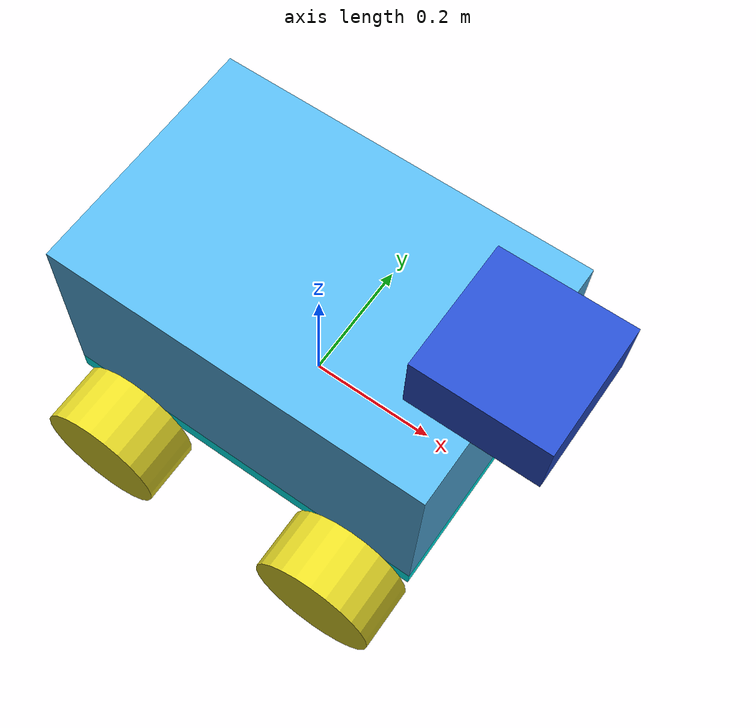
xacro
<?xml version='1.0'?>

<robot name="robot" xmlns:xacro="http://www.ros.org/wiki/xacro">

  <!-- CONSTANTS -->
  <xacro:property name="camera_width" value="0.2"/>
  <xacro:property name="camera_length" value="0.2"/>
  <xacro:property name="camera_height" value="0.1"/>
  <xacro:property name="camera_mass" value="0.01"/>
  <xacro:property name="chassis_width" value="0.4"/>
  <xacro:property name="chassis_length" value="0.6"/>
  <xacro:property name="chassis_height" value="0.03"/>
  <xacro:property name="chassis_height_B" value="0.3"/>
  <xacro:property name="chassis_mass" value="1.5"/>
  <xacro:property name="chassis_mass_B" value="0.005"/>
  <xacro:property name="wheel_radius" value="0.1"/>
  <xacro:property name="wheel_width" value="0.1"/>
  <xacro:property name="wheel_mass" value="0.25"/>

  <xacro:property name="i0" value="1e-10"/> <!-- default inertia -->

  <xacro:property name="u0" value="0.5"/> <!-- default miu (friction coef.) (orig: 0.8693)-->

  <xacro:include filename="$(find competition_2019t2)/urdf/materials.xacro"/>

  <!-- MACROS -->
  <macro name="cylinder_inertial" params="name m r h">
    <inertial name="${name}_inertial">
      <mass value="${m}"/>
      <inertia  ixx="${m*(3*r*r+h*h)/12}" ixy = "${i0}" ixz = "${i0}"
                iyy="${m*(3*r*r+h*h)/12}" iyz = "${i0}"
                izz="${m*r*r/2}"/>
    </inertial>
  </macro>

  <macro name="box_inertial" params="name m x y z">
    <inertial name="${name}_inertial">
      <mass value="${m}"/>
      <inertia  ixx="${m*(y*y+z*z)/12}" ixy = "${i0}" ixz = "${i0}"
                iyy="${m*(x*x+y*y)/12}" iyz = "${i0}"
                izz="${m*(x*x+z*z)/12}"/>
    </inertial>
  </macro>

  <macro name="sphere_inertial" params="name m r">
    <inertial name="${name}_inertial">
      <mass value="${m}"/>
      <inertia  ixx="${2*m*r*r/5}" ixy = "${i0}" ixz = "${i0}"
                iyy="${2*m*r*r/5}" iyz = "${i0}"
                izz="${2*m*r*r/5}"/>
    </inertial>
  </macro>

  <!-- ROBOT DESIGN -->

  <!-- 1. Chasis -->
  <link name='chassis'>
    <xacro:box_inertial name="chassis" m="${chassis_mass}" x="${chassis_length}" y="${chassis_width}" z="${chassis_height}"/>
    <collision name='chassis_collision'>
      <geometry>
        <box size="${chassis_length} ${chassis_width} ${chassis_height}"/>
      </geometry>
    </collision>
    <visual name='chassis_visual'>
      <origin xyz="0 0 0" rpy=" 0 0 0"/>
      <geometry>
        <box size="${chassis_length} ${chassis_width} ${chassis_height}"/>
      </geometry>
      <material name="Cyan">
        <color rgba="0 1.0 1.0 1.0"/>
      </material>
    </visual>
  </link>

  <link name="upper_half">
    <xacro:box_inertial name="upper_half" m="${chassis_mass_B}" x="${chassis_length}" y="${chassis_width}" z="${chassis_height_B}"/>
    <origin xyz = "0.0 0.0 0.0"/>
    <visual>
      <geometry>
        <box size = "${chassis_length} ${chassis_width} ${chassis_height_B}"/>
      </geometry>
    </visual>
    <collision>
      <geometry>
        <box size = "${chassis_length} ${chassis_width} ${chassis_height_B}"/>
      </geometry>
    </collision>
  </link>

  <joint name="chassis_joint" type="fixed">
    <origin xyz="0 0 ${chassis_height/2+chassis_height_B/2}"/>
    <parent link="chassis"/>
    <child link="upper_half"/>
  </joint>

  <!-- 2. Wheels -->
  <link name='wheel_FR'>
    <xacro:cylinder_inertial name="wheel_FR" m="${wheel_mass}" r="${wheel_radius}" h="${wheel_width}"/>
    <collision name='wheel_FR_collision'>
      <origin xyz="0 0 0" rpy="1.5708 0 0"/>
      <geometry>
        <cylinder radius="${wheel_radius}" length="${wheel_width}"/>
      </geometry>
    </collision>
    <visual name='wheel_FR_visual'>
      <origin xyz="0 0 0" rpy="1.5708 0 0"/>
      <geometry>
        <cylinder radius="${wheel_radius}" length="${wheel_width}"/>
      </geometry>
    </visual>
  </link>

  <link name='wheel_FL'>
    <xacro:cylinder_inertial name="wheel_FL" m="${wheel_mass}" r="${wheel_radius}" h="${wheel_width}"/>
    <collision name='wheel_FL_collision'>
      <origin xyz="0 0 0" rpy="1.5708 0 0"/>
      <geometry>
        <cylinder radius="${wheel_radius}" length="${wheel_width}"/>
      </geometry>
    </collision>
    <visual name='wheel_FL_visual'>
      <origin xyz="0 0 0" rpy="1.5708 0 0"/>
      <geometry>
        <cylinder radius="${wheel_radius}" length="${wheel_width}"/>
      </geometry>
    </visual>
  </link>

  <link name='wheel_RR'>
    <xacro:cylinder_inertial name="wheel_RR" m="${wheel_mass}" r="${wheel_radius}" h="${wheel_width}"/>
    <collision name='wheel_RR_collision'>
      <origin xyz="0 0 0" rpy="1.5708 0 0"/>
      <geometry>
        <cylinder radius="${wheel_radius}" length="${wheel_width}"/>
      </geometry>
    </collision>
    <visual name='wheel_RR_visual'>
      <origin xyz="0 0 0" rpy="1.5708 0 0"/>
      <geometry>
        <cylinder radius="${wheel_radius}" length="${wheel_width}"/>
      </geometry>
    </visual>
  </link>

  <link name='wheel_RL'>
    <xacro:cylinder_inertial name="wheel_RL" m="${wheel_mass}" r="${wheel_radius}" h="${wheel_width}"/>
    <collision name='wheel_RL_collision'>
      <origin xyz="0 0 0" rpy="1.5708 0 0"/>
      <geometry>
        <cylinder radius="${wheel_radius}" length="${wheel_width}"/>
      </geometry>
    </collision>
    <visual name='wheel_RL_visual'>
      <origin xyz="0 0 0" rpy="1.5708 0 0"/>
      <geometry>
        <cylinder radius="${wheel_radius}" length="${wheel_width}"/>
      </geometry>
    </visual>
  </link>

  <!-- Wheels joints -->
  <joint name="wheel_FR_joint" type="continuous">
    <parent link="chassis"/>
    <child link="wheel_FR"/>
    <origin xyz="${chassis_length/2-wheel_radius} -${chassis_width/2+wheel_width/2} -${chassis_height/2+wheel_radius/2}"
            rpy="0 0 0"/>
    <axis xyz="0 1 0"/>
  </joint>

  <joint name="wheel_FL_joint" type="continuous">
    <parent link="chassis"/>
    <child link="wheel_FL"/>
    <origin xyz="${chassis_length/2-wheel_radius} ${chassis_width/2+wheel_width/2} -${chassis_height/2+wheel_radius/2}"
            rpy="0 0 0"/>
    <axis xyz="0 1 0"/>
  </joint>

  <joint name="wheel_RR_joint" type="continuous">
    <parent link="chassis"/>
    <child link="wheel_RR"/>
    <origin xyz="-${chassis_length/2-wheel_radius} -${chassis_width/2+wheel_width/2} -${chassis_height/2+wheel_radius/2}"
            rpy="0 0 0"/>
    <axis xyz="0 1 0"/>
  </joint>

  <joint name="wheel_RL_joint" type="continuous">
    <parent link="chassis"/>
    <child link="wheel_RL"/>
    <origin xyz="-${chassis_length/2-wheel_radius} ${chassis_width/2+wheel_width/2} -${chassis_height/2+wheel_radius/2}"
            rpy="0 0 0"/>
    <axis xyz="0 1 0"/>
  </joint>

  <!-- 3. Camera -->
  <link name='camera_link'>
    <xacro:box_inertial name="camera_link" m="${camera_mass}" x="${camera_width}" y="${camera_length}" z="${camera_height}"/>
    <collision name='camera_link_collision'>
      <geometry>
        <box size="${camera_length} ${camera_width} ${camera_height}"/>
      </geometry>
    </collision>
    <visual name='camera_link_visual'>
      <origin xyz="0 0 0" rpy=" 0 0 0"/>
      <geometry>
        <box size="${camera_length} ${camera_width} ${camera_height}"/>
      </geometry>
    </visual>
  </link>

  <joint name="camera_joint" type="fixed">
    <parent link="chassis"/>
    <child link="camera_link"/>
    <origin xyz="${chassis_length/2} 0 ${chassis_height/2 + chassis_height_B + camera_height/2}"/>
  </joint>

  <!-- PLUGINS -->
  <gazebo reference="chassis">
    <material>Gazebo/Orange</material>
  </gazebo>

  <gazebo reference="camera_link">
    <material>Gazebo/Blue</material>
  </gazebo>

  <gazebo reference="wheel_FR">
    <mu1>${u0}</mu1>
    <mu2>${u0}</mu2>
    <material>Gazebo/Yellow</material>
  </gazebo>
  <gazebo reference="wheel_FL">
    <mu1>${u0}</mu1>
    <mu2>${u0}</mu2>
    <material>Gazebo/Yellow</material>
  </gazebo>
  <gazebo reference="wheel_RR">
    <mu1>${u0}</mu1>
    <mu2>${u0}</mu2>
    <material>Gazebo/Yellow</material>
  </gazebo>
  <gazebo reference="wheel_RL">
    <mu1>${u0}</mu1>
    <mu2>${u0}</mu2>
    <material>Gazebo/Yellow</material>
  </gazebo>

  <gazebo>
    <plugin name="skid_steer_drive_controller" filename="libgazebo_ros_skid_steer_drive.so">
      <updateRate>10.0</updateRate>
      <robotNamespace>/</robotNamespace>
      <leftFrontJoint>wheel_FL_joint</leftFrontJoint>
      <rightFrontJoint>wheel_FR_joint</rightFrontJoint>
      <leftRearJoint>wheel_RL_joint</leftRearJoint>
      <rightRearJoint>wheel_RR_joint</rightRearJoint>
      <wheelSeparation>0.4</wheelSeparation>
      <wheelDiameter>0.215</wheelDiameter>
      <robotBaseFrame>base_link</robotBaseFrame>
      <torque>20</torque>
      <topicName>cmd_vel</topicName>
      <broadcastTF>false</broadcastTF>
    </plugin>
  </gazebo>

  <gazebo reference="camera_link">
    <sensor type="camera" name="camera1">
      <update_rate>10.0</update_rate>
      <camera name="head">
        <horizontal_fov>2</horizontal_fov>
        <image>
          <width>640</width>
          <height>480</height>
          <format>R8G8B8</format>
        </image>
        <clip>
          <near>0.02</near>
          <far>300</far>
        </clip>
        <noise>
          <type>gaussian</type>
          <!-- Noise is sampled independently per pixel on each frame.
               That pixel's noise value is added to each of its color
               channels, which at that point lie in the range [0,1]. -->
          <mean>0.0</mean>
          <stddev>0.007</stddev>
        </noise>
      </camera>
      <plugin name="camera_controller" filename="libgazebo_ros_camera.so">
        <alwaysOn>true</alwaysOn>
        <updateRate>0.0</updateRate>
        <cameraName>rrbot/camera1</cameraName>
        <imageTopicName>image_raw</imageTopicName>
        <cameraInfoTopicName>camera_info</cameraInfoTopicName>
        <frameName>camera_link</frameName>
        <hackBaseline>0.07</hackBaseline>
        <distortionK1>0.0</distortionK1>
        <distortionK2>0.0</distortionK2>
        <distortionK3>0.0</distortionK3>
        <distortionT1>0.0</distortionT1>
        <distortionT2>0.0</distortionT2>
      </plugin>
    </sensor>
  </gazebo>

    <gazebo>
    <plugin name="p3d_base_controller" filename="libgazebo_ros_p3d.so">
      <alwaysOn>true</alwaysOn>
      <updateRate>50.0</updateRate>
      <bodyName>chassis</bodyName>
      <topicName>ground_truth/state</topicName>
      <gaussianNoise>0.01</gaussianNoise>
      <frameName>world</frameName>
      <xyzOffset>0 0 0</xyzOffset>
      <rpyOffset>0 0 0</rpyOffset>
    </plugin>
  </gazebo>

</robot>
